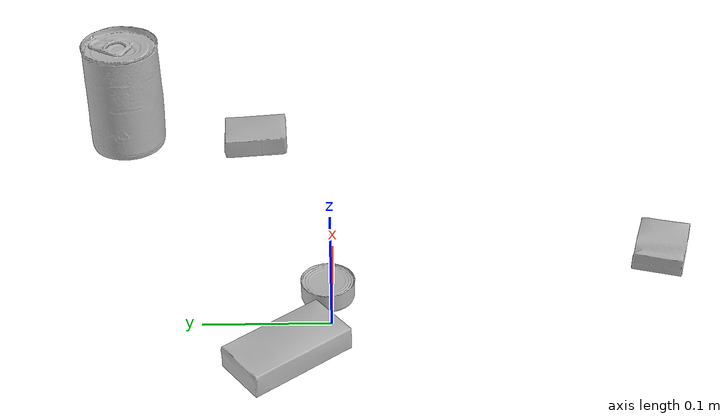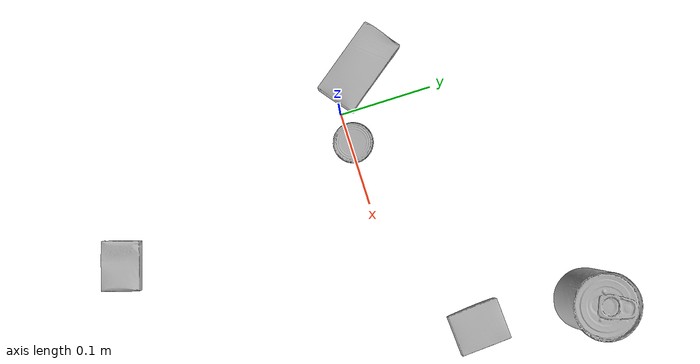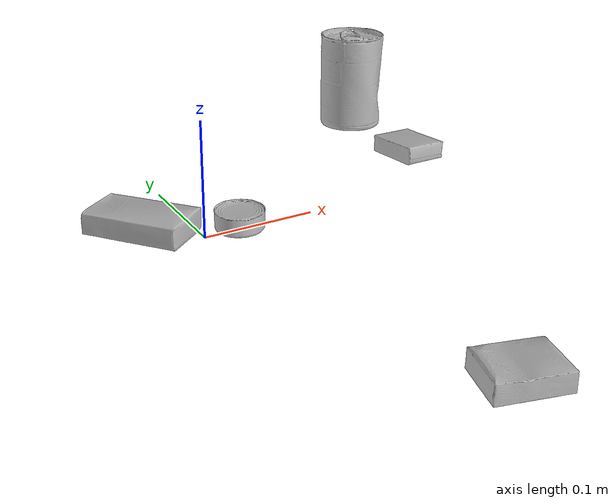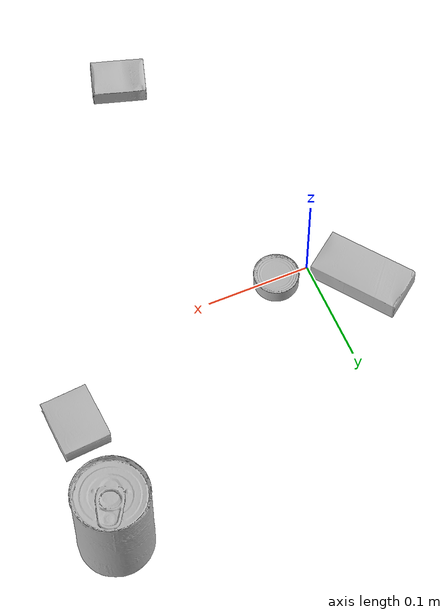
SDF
<sdf version="1.4">
  <world name="default">
    <light name="light1" type="point">
      <pose>0 0 1 0 0 0</pose>
      <diffuse>3 3 3 1</diffuse>
      <specular>3 3 3 1</specular>
    </light>
    <light name="light2" type="point">
      <pose>0 0.5 2 0 0 0</pose>
      <diffuse>1 1 1 1</diffuse>
      <specular>1 1 1 1</specular>
    </light>
    <light name="light3" type="point">
      <pose>0 0.5 2 0 0 0</pose>
      <diffuse>3 3 3 1</diffuse>
      <specular>3 3 3 1</specular>
    </light>
    <scene>
      <ambient>0.7 0.7 0.7</ambient>
    </scene>
    <model name="box1">
      <link name="link_box1">
        <collision name="default">
          <geometry>
            <mesh>
              <uri>model://cracker_box/collision_meshes/collision.obj</uri>
              <scale>0.25 0.25 0.25</scale>
            </mesh>
          </geometry>
          <surface>
            <friction>
              <ode>
                <mu>0.5</mu>
                <mu2>0.5</mu2>
              </ode>
            </friction>
          <contact>
        <ode>
            <max_vel>0</max_vel>
            <min_depth>0.0001</min_depth>
            <kp>1e8</kp>
        </ode>
    </contact></surface>
        </collision>
        <visual name="default">
          <geometry>
            <mesh>
              <uri>model://cracker_box/visual_meshes/visual.dae</uri>
              <scale>0.25 0.25 0.25</scale>
            </mesh>
          </geometry>
        </visual>
        <inertial>
          <mass>0.029061755165457726</mass>
          <pose>0.00023660456645302474 6.358561950037256e-05 -0.0004257383698131889 -0.0003162077745192934 -0.011106489600167671 0.002546795235645709</pose>
          <inertia>
            <ixx>4.620008e-06</ixx>
            <iyy>7.6285405e-06</iyy>
            <izz>1.0886628e-05</izz>
            <ixy>0</ixy>
            <ixz>0</ixz>
            <iyz>0</iyz>
          </inertia>
        </inertial>
      </link>
      <pose>0.08329463750123978 -0.2688145637512207 0.009096028283238411 -0.014050372672437979 -0.005016817421696394 -0.2966130581041365</pose>
    </model>
    <model name="box2">
      <link name="link_box2">
        <collision name="default">
          <geometry>
            <mesh>
              <uri>model://sugar_box/collision_meshes/collision.obj</uri>
              <scale>0.5 0.5 0.5</scale>
            </mesh>
          </geometry>
          <surface>
            <friction>
              <ode>
                <mu>0.5</mu>
                <mu2>0.5</mu2>
              </ode>
            </friction>
          <contact>
        <ode>
            <max_vel>0</max_vel>
            <min_depth>0.0001</min_depth>
            <kp>1e8</kp>
        </ode>
    </contact></surface>
        </collision>
        <visual name="default">
          <geometry>
            <mesh>
              <uri>model://sugar_box/visual_meshes/visual.dae</uri>
              <scale>0.5 0.5 0.5</scale>
            </mesh>
          </geometry>
        </visual>
        <inertial>
          <mass>0.08909860998392105</mass>
          <pose>0.0005171863595023751 1.924554817378521e-05 -0.00018182402709499002 -0.00040462606756407727 0.0010506635218583888 0.002615378789044619</pose>
          <inertia>
            <ixx>1.8559176e-05</ixx>
            <iyy>5.9987076e-05</iyy>
            <izz>7.181169e-05</izz>
            <ixy>0</ixy>
            <ixz>0</ixz>
            <iyz>0</iyz>
          </inertia>
        </inertial>
      </link>
      <pose>-0.040918249636888504 0.03324026241898537 0.011399305425584316 0.000775732628066045 -0.02343286657747378 -0.9280835323045596</pose>
    </model>
    <model name="box3">
      <link name="link_box3">
        <collision name="default">
          <geometry>
            <mesh>
              <uri>model://pudding_box/collision_meshes/collision.obj</uri>
              <scale>0.5 0.5 0.5</scale>
            </mesh>
          </geometry>
          <surface>
            <friction>
              <ode>
                <mu>0.5</mu>
                <mu2>0.5</mu2>
              </ode>
            </friction>
          <contact>
        <ode>
            <max_vel>0</max_vel>
            <min_depth>0.0001</min_depth>
            <kp>1e8</kp>
        </ode>
    </contact></surface>
        </collision>
        <visual name="default">
          <geometry>
            <mesh>
              <uri>model://pudding_box/visual_meshes/visual.dae</uri>
              <scale>0.5 0.5 0.5</scale>
            </mesh>
          </geometry>
        </visual>
        <inertial>
          <mass>0.058397307991981506</mass>
          <pose>0.00024474109522998333 0.000403394311433658 -0.0002594413817860186 0.005213099939270767 -0.006603797768571226 0.020079825168092046</pose>
          <inertia>
            <ixx>1.650379e-05</ixx>
            <iyy>1.1103868e-05</iyy>
            <izz>2.437216e-05</izz>
            <ixy>0</ixy>
            <ixz>0</ixz>
            <iyz>0</iyz>
          </inertia>
        </inertial>
      </link>
      <pose>0.2577248215675354 0.07067876309156418 0.009862900711596012 0.022348543962481485 -0.011391658532614092 -3.0879369618516628</pose>
    </model>
    <model name="can1">
      <link name="link_can1">
        <collision name="default">
          <geometry>
            <mesh>
              <uri>model://tuna_fish_can/collision_meshes/collision.obj</uri>
              <scale>0.5 0.5 0.5</scale>
            </mesh>
          </geometry>
          <surface>
            <friction>
              <ode>
                <mu>0.5</mu>
                <mu2>0.5</mu2>
              </ode>
            </friction>
          <contact>
        <ode>
            <max_vel>0</max_vel>
            <min_depth>0.0001</min_depth>
            <kp>1e8</kp>
        </ode>
    </contact></surface>
        </collision>
        <visual name="default">
          <geometry>
            <mesh>
              <uri>model://tuna_fish_can/visual_meshes/visual.dae</uri>
              <scale>0.5 0.5 0.5</scale>
            </mesh>
          </geometry>
        </visual>
        <inertial>
          <mass>0.024247437715530396</mass>
          <pose>-2.0361860151751898e-05 -7.256063781824196e-06 -0.000526902440469712 -0.0017944785229743307 0.0001716120442354053 0.2405371667019961</pose>
          <inertia>
            <ixx>3.2782896e-06</ixx>
            <iyy>3.2646258e-06</iyy>
            <izz>5.609621e-06</izz>
            <ixy>0</ixy>
            <ixz>0</ixz>
            <iyz>0</iyz>
          </inertia>
        </inertial>
      </link>
      <pose>0.03340510278940201 0.003284579375758767 0.00851999782025814 1.604299773008602e-08 1.196142960461167e-08 2.624438747134841</pose>
    </model>
    <model name="can2">
      <link name="link_can2">
        <collision name="default">
          <geometry>
            <mesh>
              <uri>model://tomato_soup_can/collision_meshes/collision.obj</uri>
              <scale>1.0 1.0 1.0</scale>
            </mesh>
          </geometry>
          <surface>
            <friction>
              <ode>
                <mu>0.5</mu>
                <mu2>0.5</mu2>
              </ode>
            </friction>
          <contact>
        <ode>
            <max_vel>0</max_vel>
            <min_depth>0.0001</min_depth>
            <kp>1e8</kp>
        </ode>
    </contact></surface>
        </collision>
        <visual name="default">
          <geometry>
            <mesh>
              <uri>model://tomato_soup_can/visual_meshes/visual.dae</uri>
              <scale>1.0 1.0 1.0</scale>
            </mesh>
          </geometry>
        </visual>
        <inertial>
          <mass>0.44329848885536194</mass>
          <pose>0.0001265227037947625 0.00010805520287249237 -0.0017973989015445113 0.007020066893531886 0.00042299576578658417 -0.009903435969571123</pose>
          <inertia>
            <ixx>0.00048603912</ixx>
            <iyy>0.0004832301</iyy>
            <izz>0.00025190957</izz>
            <ixy>0</ixy>
            <ixz>0</ixz>
            <iyz>0</iyz>
          </inertia>
        </inertial>
      </link>
      <pose>0.2648589015007019 0.1869053989648819 0.05127401277422905 -3.1446378246720684e-07 -4.0830757826221237e-07 2.4424205631652103</pose>
    </model>
  <physics type="ode">
      <max_contacts>50</max_contacts>
      <ode>
        <solver>
          <type>quick</type>
          <iters>75</iters>
        </solver>
        <constraints>
          <contact_max_correcting_vel>0</contact_max_correcting_vel>
          <contact_surface_layer>0</contact_surface_layer>
        </constraints>
      </ode>
    </physics></world>
</sdf>
